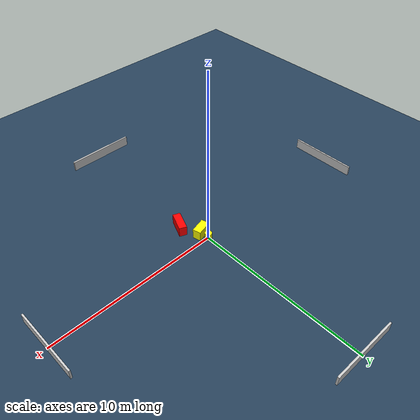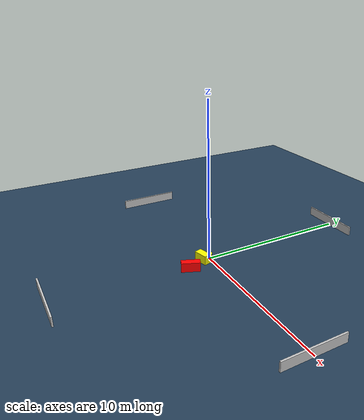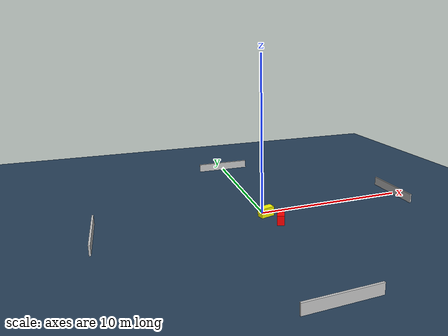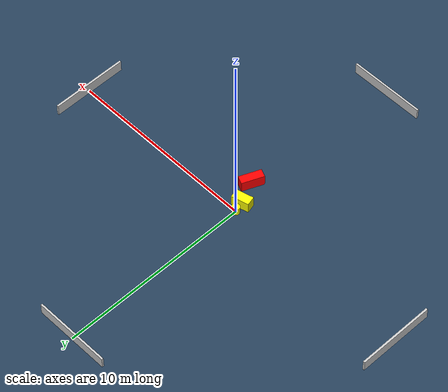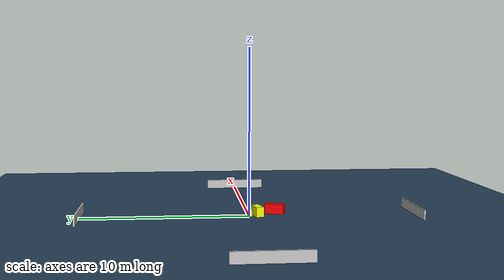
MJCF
<?xml version="1.0" ?>
<mujoco model="generated_environment">
  <option timestep="0.01" integrator="RK4" cone="elliptic"/>
  <default>
    <geom density="1"/>
  </default>
  <asset>
    <texture builtin="gradient" height="3072" name="skybox" rgb1="0.3 0.5 0.7" rgb2="0 0 0" type="skybox" width="512"/>
    <texture builtin="checker" height="300" name="groundplane" rgb1="0.2 0.3 0.4" rgb2="0.1 0.2 0.3" type="2d" width="300"/>
    <material name="groundplane" reflectance="0.2" texrepeat="5 5" texture="groundplane"/>
  </asset>
  <worldbody>
    <light dir="0 0 -1" directional="true" pos="0 0 1.5"/>
    <geom condim="3" friction="0.5 0.005 0.001" material="groundplane" name="floor" pos="0 0 0" size="0 0 0.05" type="plane"/>
    <body name="walls">
      <geom name="wall_1" condim="4" pos="-10.0 0.0 0.3" rgba="0.800000011920929 0.800000011920929 0.800000011920929 1.0" size="0.05 2.0 0.3" type="box"/>
      <geom name="wall_2" condim="4" pos="10.0 0.0 0.3" rgba="0.800000011920929 0.800000011920929 0.800000011920929 1.0" size="0.05 2.0 0.3" type="box"/>
      <geom name="wall_3" condim="4" pos="0.0 -10.0 0.3" rgba="0.800000011920929 0.800000011920929 0.800000011920929 1.0" size="2.0 0.05 0.3" type="box"/>
      <geom name="wall_4" condim="4" pos="0.0 10.0 0.3" rgba="0.800000011920929 0.800000011920929 0.800000011920929 1.0" size="2.0 0.05 0.3" type="box"/>
    </body>
    <body name="robot">
      <joint name="joint_x" type="slide" pos="0 0 0" axis="1 0 0"/>
      <joint name="joint_y" type="slide" pos="0 0 0" axis="0 1 0"/>
      <geom name="robot" type="cylinder" pos="0.0 0.0 0.2" size="0.2 0.2 0.0" mass="5.0" friction="1.0 0.005 0.0001" condim="4" rgba="1.0 1.0 0.0 1.0"/>
    </body>
    <body name="obstacle_1_movable">
      <geom name="obstacle_1_movable" condim="4" pos="0.080357714046289 -0.4930794967811046 0.3" euler="0 0 194.6033835083515" friction="0.0 0.005 0.001" rgba="1.0 1.0 0.0 1.0" size="0.4546310848989223 0.23763577209027115 0.3" type="box" mass="0.1"/>
      <joint type="free"/>
    </body>
    <body name="obstacle_2_static">
      <geom name="obstacle_2_static" condim="4" pos="0.6384143432569882 -1.6190444654084244 0.3" euler="0 0 247.09310447589044" friction="0.0 0.005 0.001" rgba="1.0 0.0 0.0 1.0" size="0.5822528698337832 0.21942999993153645 0.3" type="box"/>
    </body>
  </worldbody>
  <actuator>
    <motor name="actuator_x" joint="joint_x" gear="1" ctrlrange="-1 1"/>
    <motor name="actuator_y" joint="joint_y" gear="1" ctrlrange="-1 1"/>
  </actuator>
</mujoco>
